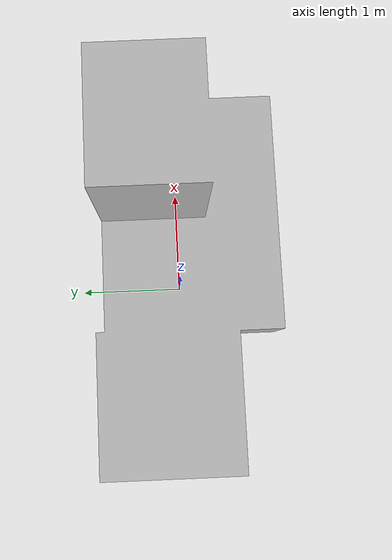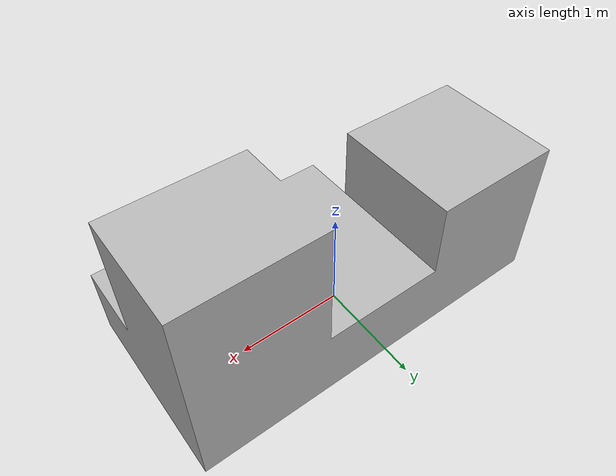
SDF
<?xml version="1.0" ?>
<sdf version="1.5">
  <model name='obs01'>
    <static>true</static>
    <link name="link">
      <collision name='collision'>
        <geometry>
          <mesh>
            <uri>model://obs01/mesh/Obs01.stl</uri>
            <scale>0.01 0.01 0.01</scale>
          </mesh>
        </geometry>
      </collision>

      <visual name='visual'>
        <geometry>
          <mesh>
            <uri>model://obs01/mesh/Obs01.stl</uri>
            <scale>0.01 0.01 0.01</scale>
          </mesh>
        </geometry>
        <material>
          <script>
            <uri>model://obs01/materials/scripts</uri>
            <uri>model://obs01/materials/textures</uri>
            <name>buildMat/Tex1</name>
          </script>
        </material>
      </visual>
    </link>
  </model>
</sdf>
